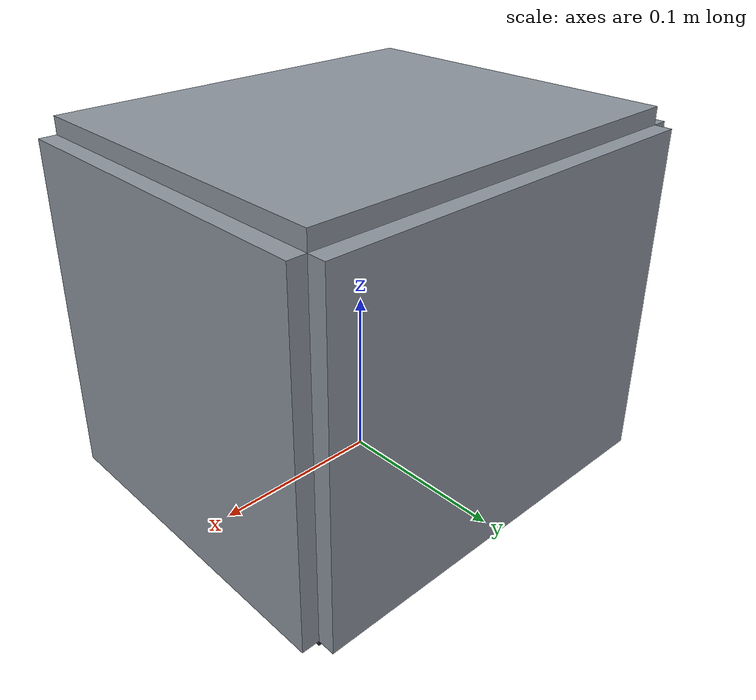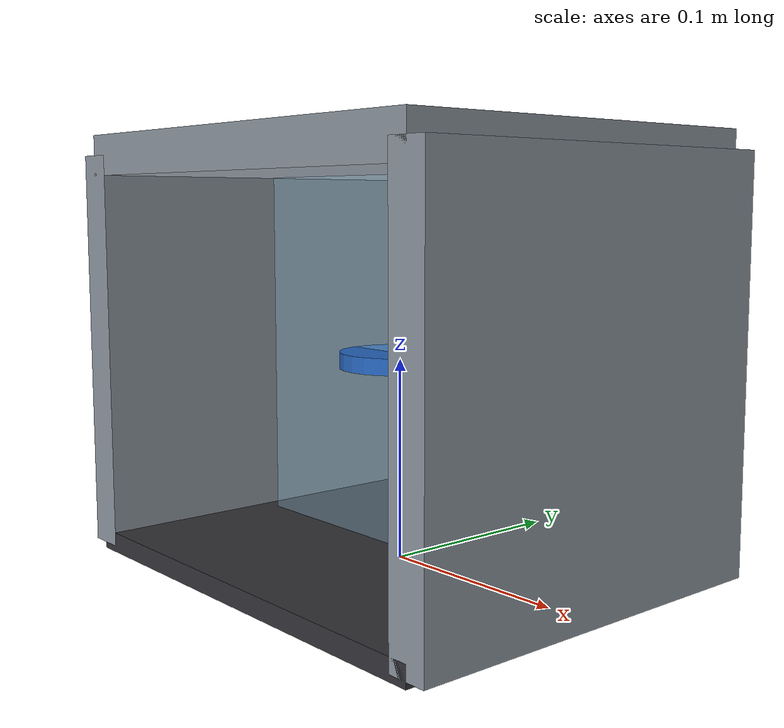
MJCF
<?xml version="1.0" encoding="utf-8"?>
<mujoco model="real_lab_rice_university_mask_aligner">
  <compiler angle="radian" autolimits="true"/>
  <default>
    <default class="body"><geom contype="1" conaffinity="1"/></default>
  </default>
  <worldbody>
    <body name="base">
      <geom type="box" size="0.12 0.01 0.1" pos="0 0.1 0.1" rgba="0.55 0.58 0.62 1" class="body"/>
      <geom type="box" size="0.01 0.1 0.1" pos="-0.12 0 0.1" rgba="0.55 0.58 0.62 1" class="body"/>
      <geom type="box" size="0.01 0.1 0.1" pos="0.12 0 0.1" rgba="0.55 0.58 0.62 1" class="body"/>
      <geom type="box" size="0.12 0.1 0.01" pos="0 0 0.2" rgba="0.55 0.58 0.62 1" class="body"/>
      <geom type="box" size="0.12 0.1 0.005" pos="0 0 0.002" rgba="0.2 0.2 0.22 1" class="body"/>
      <geom type="cylinder" size="0.03 0.004" pos="0 0 0.1" rgba="0.15 0.4 0.75 0.9" class="body"/>
      <body name="door" pos="-0.1 0.0 0.1">
        <joint name="door_joint" type="hinge" axis="0 0 1" range="0 1.8" damping="0.6" frictionloss="0.3"/>
  <geom type="box" size="0.1 0.005 0.1" pos="0.1 0 0" rgba="0.6 0.8 0.9 0.35" class="body"/>
      </body>
    </body>
  </worldbody>
</mujoco>
